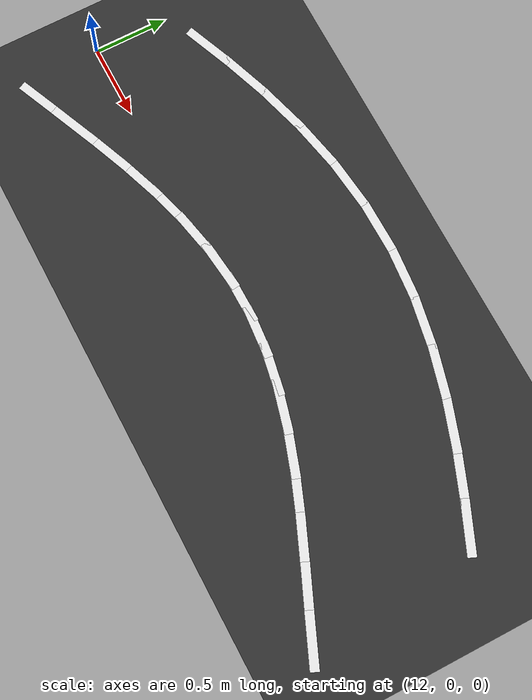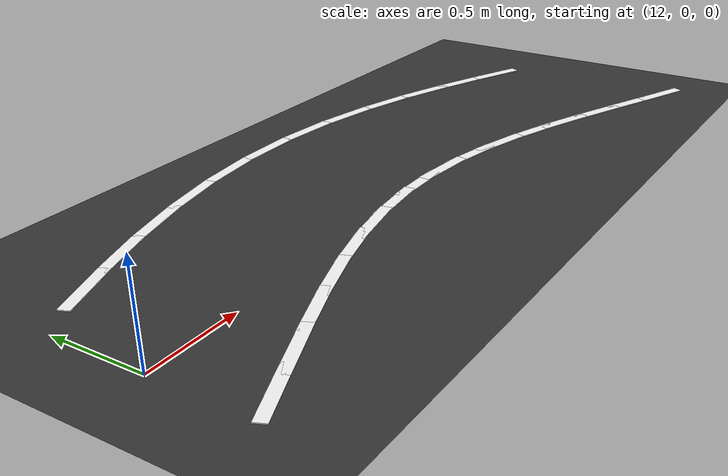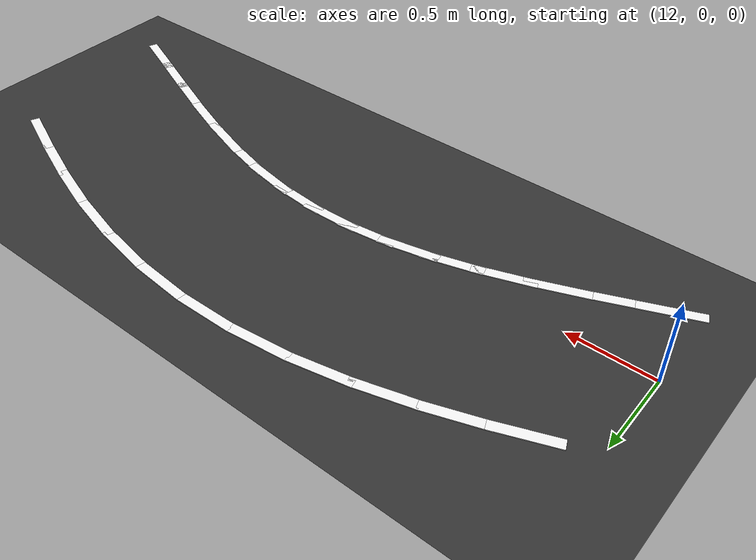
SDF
<sdf version="1.7">
 <world name="cone_lane">
  <model name="ground_plane">
   <static>true</static>
   <link name="link">
    <collision name="collision">
     <geometry><plane><normal>0 0 1</normal><size>150 150</size></plane></geometry>
     <surface><friction><ode><mu>1.0</mu></ode></friction></surface>
    </collision>
    <visual name="visual">
     <geometry><plane><normal>0 0 1</normal><size>100 100</size></plane></geometry>
     <material>
      <ambient>0.16 0.16 0.16 1</ambient>
      <diffuse>0.20 0.20 0.20 1</diffuse>
      <specular>0.02 0.02 0.02 1</specular>
     </material>
    </visual>
   </link>
  </model>
  <model name="line_L044">
   <static>true</static>
   <pose>12.315 0.675 0.0030 0 0 0.3797</pose>
   <link name="link">
    <visual name="v">
     <geometry><box><size>0.360 0.060 0.005</size></box></geometry>
     <material>
      <ambient>0.85 0.85 0.85 1</ambient>
      <diffuse>0.95 0.95 0.95 1</diffuse>
      <specular>0.1 0.1 0.1 1</specular>
     </material>
    </visual>
   </link>
  </model>
  <model name="line_L045">
   <static>true</static>
   <pose>12.613 0.788 0.0030 0 0 0.3397</pose>
   <link name="link">
    <visual name="v">
     <geometry><box><size>0.360 0.060 0.005</size></box></geometry>
     <material>
      <ambient>0.85 0.85 0.85 1</ambient>
      <diffuse>0.95 0.95 0.95 1</diffuse>
      <specular>0.1 0.1 0.1 1</specular>
     </material>
    </visual>
   </link>
  </model>
  <model name="line_L046">
   <static>true</static>
   <pose>12.943 0.893 0.0030 0 0 0.2782</pose>
   <link name="link">
    <visual name="v">
     <geometry><box><size>0.360 0.060 0.005</size></box></geometry>
     <material>
      <ambient>0.85 0.85 0.85 1</ambient>
      <diffuse>0.95 0.95 0.95 1</diffuse>
      <specular>0.1 0.1 0.1 1</specular>
     </material>
    </visual>
   </link>
  </model>
  <model name="line_L047">
   <static>true</static>
   <pose>13.258 0.971 0.0030 0 0 0.2052</pose>
   <link name="link">
    <visual name="v">
     <geometry><box><size>0.360 0.060 0.005</size></box></geometry>
     <material>
      <ambient>0.85 0.85 0.85 1</ambient>
      <diffuse>0.95 0.95 0.95 1</diffuse>
      <specular>0.1 0.1 0.1 1</specular>
     </material>
    </visual>
   </link>
  </model>
  <model name="line_L048">
   <static>true</static>
   <pose>13.603 1.027 0.0030 0 0 0.1135</pose>
   <link name="link">
    <visual name="v">
     <geometry><box><size>0.360 0.060 0.005</size></box></geometry>
     <material>
      <ambient>0.85 0.85 0.85 1</ambient>
      <diffuse>0.95 0.95 0.95 1</diffuse>
      <specular>0.1 0.1 0.1 1</specular>
     </material>
    </visual>
   </link>
  </model>
  <model name="line_L049">
   <static>true</static>
   <pose>13.953 1.050 0.0030 0 0 0.0136</pose>
   <link name="link">
    <visual name="v">
     <geometry><box><size>0.360 0.060 0.005</size></box></geometry>
     <material>
      <ambient>0.85 0.85 0.85 1</ambient>
      <diffuse>0.95 0.95 0.95 1</diffuse>
      <specular>0.1 0.1 0.1 1</specular>
     </material>
    </visual>
   </link>
  </model>
  <model name="line_L050">
   <static>true</static>
   <pose>14.304 1.037 0.0030 0 0 -0.0874</pose>
   <link name="link">
    <visual name="v">
     <geometry><box><size>0.360 0.060 0.005</size></box></geometry>
     <material>
      <ambient>0.85 0.85 0.85 1</ambient>
      <diffuse>0.95 0.95 0.95 1</diffuse>
      <specular>0.1 0.1 0.1 1</specular>
     </material>
    </visual>
   </link>
  </model>
  <model name="line_L051">
   <static>true</static>
   <pose>14.650 0.989 0.0030 0 0 -0.1819</pose>
   <link name="link">
    <visual name="v">
     <geometry><box><size>0.360 0.060 0.005</size></box></geometry>
     <material>
      <ambient>0.85 0.85 0.85 1</ambient>
      <diffuse>0.95 0.95 0.95 1</diffuse>
      <specular>0.1 0.1 0.1 1</specular>
     </material>
    </visual>
   </link>
  </model>
  <model name="line_L052">
   <static>true</static>
   <pose>14.968 0.918 0.0030 0 0 -0.2588</pose>
   <link name="link">
    <visual name="v">
     <geometry><box><size>0.360 0.060 0.005</size></box></geometry>
     <material>
      <ambient>0.85 0.85 0.85 1</ambient>
      <diffuse>0.95 0.95 0.95 1</diffuse>
      <specular>0.1 0.1 0.1 1</specular>
     </material>
    </visual>
   </link>
  </model>
  <model name="line_L053">
   <static>true</static>
   <pose>15.300 0.818 0.0030 0 0 -0.3251</pose>
   <link name="link">
    <visual name="v">
     <geometry><box><size>0.360 0.060 0.005</size></box></geometry>
     <material>
      <ambient>0.85 0.85 0.85 1</ambient>
      <diffuse>0.95 0.95 0.95 1</diffuse>
      <specular>0.1 0.1 0.1 1</specular>
     </material>
    </visual>
   </link>
  </model>
  <model name="line_L054">
   <static>true</static>
   <pose>15.601 0.708 0.0030 0 0 -0.3700</pose>
   <link name="link">
    <visual name="v">
     <geometry><box><size>0.360 0.060 0.005</size></box></geometry>
     <material>
      <ambient>0.85 0.85 0.85 1</ambient>
      <diffuse>0.95 0.95 0.95 1</diffuse>
      <specular>0.1 0.1 0.1 1</specular>
     </material>
    </visual>
   </link>
  </model>
  <model name="line_L055">
   <static>true</static>
   <pose>15.894 0.589 0.0030 0 0 -0.3976</pose>
   <link name="link">
    <visual name="v">
     <geometry><box><size>0.360 0.060 0.005</size></box></geometry>
     <material>
      <ambient>0.85 0.85 0.85 1</ambient>
      <diffuse>0.95 0.95 0.95 1</diffuse>
      <specular>0.1 0.1 0.1 1</specular>
     </material>
    </visual>
   </link>
  </model>
  <model name="line_R042">
   <static>true</static>
   <pose>12.158 -0.476 0.0030 0 0 0.4076</pose>
   <link name="link">
    <visual name="v">
     <geometry><box><size>0.360 0.060 0.005</size></box></geometry>
     <material>
      <ambient>0.85 0.85 0.85 1</ambient>
      <diffuse>0.95 0.95 0.95 1</diffuse>
      <specular>0.1 0.1 0.1 1</specular>
     </material>
    </visual>
   </link>
  </model>
  <model name="line_R043">
   <static>true</static>
   <pose>12.416 -0.366 0.0030 0 0 0.4023</pose>
   <link name="link">
    <visual name="v">
     <geometry><box><size>0.360 0.060 0.005</size></box></geometry>
     <material>
      <ambient>0.85 0.85 0.85 1</ambient>
      <diffuse>0.95 0.95 0.95 1</diffuse>
      <specular>0.1 0.1 0.1 1</specular>
     </material>
    </visual>
   </link>
  </model>
  <model name="line_R044">
   <static>true</static>
   <pose>12.685 -0.254 0.0030 0 0 0.3797</pose>
   <link name="link">
    <visual name="v">
     <geometry><box><size>0.360 0.060 0.005</size></box></geometry>
     <material>
      <ambient>0.85 0.85 0.85 1</ambient>
      <diffuse>0.95 0.95 0.95 1</diffuse>
      <specular>0.1 0.1 0.1 1</specular>
     </material>
    </visual>
   </link>
  </model>
  <model name="line_R045">
   <static>true</static>
   <pose>12.947 -0.155 0.0030 0 0 0.3397</pose>
   <link name="link">
    <visual name="v">
     <geometry><box><size>0.360 0.060 0.005</size></box></geometry>
     <material>
      <ambient>0.85 0.85 0.85 1</ambient>
      <diffuse>0.95 0.95 0.95 1</diffuse>
      <specular>0.1 0.1 0.1 1</specular>
     </material>
    </visual>
   </link>
  </model>
  <model name="line_R046">
   <static>true</static>
   <pose>13.217 -0.068 0.0030 0 0 0.2782</pose>
   <link name="link">
    <visual name="v">
     <geometry><box><size>0.360 0.060 0.005</size></box></geometry>
     <material>
      <ambient>0.85 0.85 0.85 1</ambient>
      <diffuse>0.95 0.95 0.95 1</diffuse>
      <specular>0.1 0.1 0.1 1</specular>
     </material>
    </visual>
   </link>
  </model>
  <model name="line_R047">
   <static>true</static>
   <pose>13.462 -0.008 0.0030 0 0 0.2052</pose>
   <link name="link">
    <visual name="v">
     <geometry><box><size>0.360 0.060 0.005</size></box></geometry>
     <material>
      <ambient>0.85 0.85 0.85 1</ambient>
      <diffuse>0.95 0.95 0.95 1</diffuse>
      <specular>0.1 0.1 0.1 1</specular>
     </material>
    </visual>
   </link>
  </model>
  <model name="line_R048">
   <static>true</static>
   <pose>13.717 0.034 0.0030 0 0 0.1135</pose>
   <link name="link">
    <visual name="v">
     <geometry><box><size>0.360 0.060 0.005</size></box></geometry>
     <material>
      <ambient>0.85 0.85 0.85 1</ambient>
      <diffuse>0.95 0.95 0.95 1</diffuse>
      <specular>0.1 0.1 0.1 1</specular>
     </material>
    </visual>
   </link>
  </model>
  <model name="line_R049">
   <static>true</static>
   <pose>13.967 0.050 0.0030 0 0 0.0136</pose>
   <link name="link">
    <visual name="v">
     <geometry><box><size>0.360 0.060 0.005</size></box></geometry>
     <material>
      <ambient>0.85 0.85 0.85 1</ambient>
      <diffuse>0.95 0.95 0.95 1</diffuse>
      <specular>0.1 0.1 0.1 1</specular>
     </material>
    </visual>
   </link>
  </model>
  <model name="line_R050">
   <static>true</static>
   <pose>14.216 0.040 0.0030 0 0 -0.0874</pose>
   <link name="link">
    <visual name="v">
     <geometry><box><size>0.360 0.060 0.005</size></box></geometry>
     <material>
      <ambient>0.85 0.85 0.85 1</ambient>
      <diffuse>0.95 0.95 0.95 1</diffuse>
      <specular>0.1 0.1 0.1 1</specular>
     </material>
    </visual>
   </link>
  </model>
  <model name="line_R051">
   <static>true</static>
   <pose>14.470 0.006 0.0030 0 0 -0.1819</pose>
   <link name="link">
    <visual name="v">
     <geometry><box><size>0.360 0.060 0.005</size></box></geometry>
     <material>
      <ambient>0.85 0.85 0.85 1</ambient>
      <diffuse>0.95 0.95 0.95 1</diffuse>
      <specular>0.1 0.1 0.1 1</specular>
     </material>
    </visual>
   </link>
  </model>
  <model name="line_R052">
   <static>true</static>
   <pose>14.712 -0.049 0.0030 0 0 -0.2588</pose>
   <link name="link">
    <visual name="v">
     <geometry><box><size>0.360 0.060 0.005</size></box></geometry>
     <material>
      <ambient>0.85 0.85 0.85 1</ambient>
      <diffuse>0.95 0.95 0.95 1</diffuse>
      <specular>0.1 0.1 0.1 1</specular>
     </material>
    </visual>
   </link>
  </model>
  <model name="line_R053">
   <static>true</static>
   <pose>14.980 -0.130 0.0030 0 0 -0.3251</pose>
   <link name="link">
    <visual name="v">
     <geometry><box><size>0.360 0.060 0.005</size></box></geometry>
     <material>
      <ambient>0.85 0.85 0.85 1</ambient>
      <diffuse>0.95 0.95 0.95 1</diffuse>
      <specular>0.1 0.1 0.1 1</specular>
     </material>
    </visual>
   </link>
  </model>
  <model name="line_R054">
   <static>true</static>
   <pose>15.239 -0.224 0.0030 0 0 -0.3700</pose>
   <link name="link">
    <visual name="v">
     <geometry><box><size>0.360 0.060 0.005</size></box></geometry>
     <material>
      <ambient>0.85 0.85 0.85 1</ambient>
      <diffuse>0.95 0.95 0.95 1</diffuse>
      <specular>0.1 0.1 0.1 1</specular>
     </material>
    </visual>
   </link>
  </model>
  <model name="line_R055">
   <static>true</static>
   <pose>15.506 -0.333 0.0030 0 0 -0.3976</pose>
   <link name="link">
    <visual name="v">
     <geometry><box><size>0.360 0.060 0.005</size></box></geometry>
     <material>
      <ambient>0.85 0.85 0.85 1</ambient>
      <diffuse>0.95 0.95 0.95 1</diffuse>
      <specular>0.1 0.1 0.1 1</specular>
     </material>
    </visual>
   </link>
  </model>
  <model name="line_R056">
   <static>true</static>
   <pose>15.782 -0.450 0.0030 0 0 -0.4077</pose>
   <link name="link">
    <visual name="v">
     <geometry><box><size>0.360 0.060 0.005</size></box></geometry>
     <material>
      <ambient>0.85 0.85 0.85 1</ambient>
      <diffuse>0.95 0.95 0.95 1</diffuse>
      <specular>0.1 0.1 0.1 1</specular>
     </material>
    </visual>
   </link>
  </model>
  <model name="line_R057">
   <static>true</static>
   <pose>16.045 -0.563 0.0030 0 0 -0.4013</pose>
   <link name="link">
    <visual name="v">
     <geometry><box><size>0.360 0.060 0.005</size></box></geometry>
     <material>
      <ambient>0.85 0.85 0.85 1</ambient>
      <diffuse>0.95 0.95 0.95 1</diffuse>
      <specular>0.1 0.1 0.1 1</specular>
     </material>
    </visual>
   </link>
  </model>
 </world>
</sdf>
